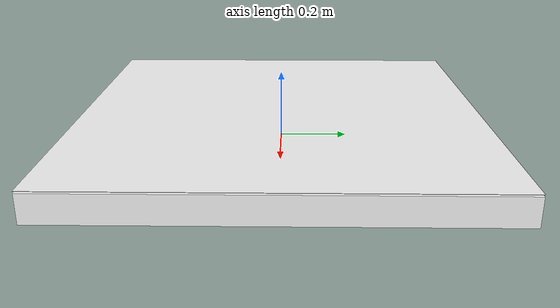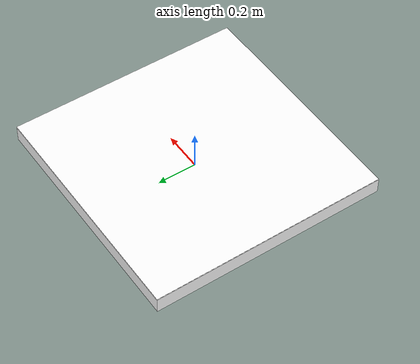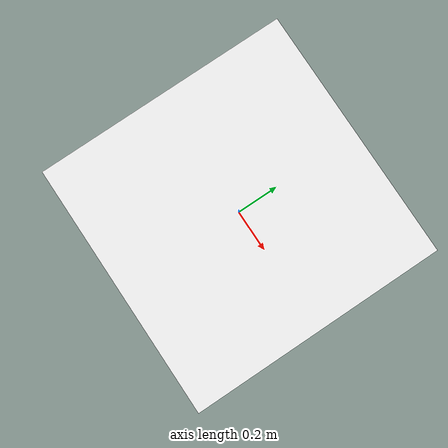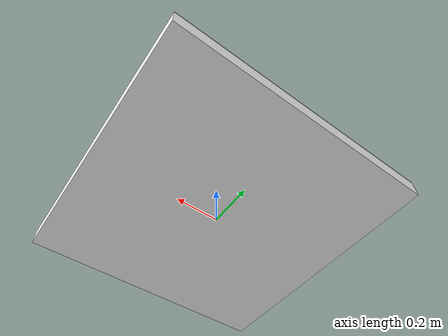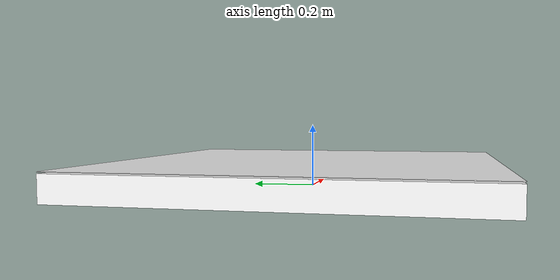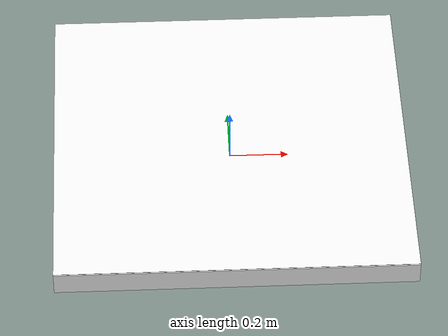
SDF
<?xml version="1.0"?>
<sdf version="1.9">
  <model name="aruco_landing_marker">
    <static>false</static>
    <pose>0 0 0.04 0 0 0</pose>

    <link name="marker_link">
      <gravity>false</gravity>
      <inertial>
        <mass>200.0</mass>
        <inertia>
          <ixx>24.1</ixx>
          <iyy>24.1</iyy>
          <izz>48.0</izz>
        </inertia>
      </inertial>

      <visual name="white_plate">
        <pose>0 0 0 0 0 0</pose>
        <geometry>
          <box>
            <size>1.20 1.20 0.08</size>
          </box>
        </geometry>
        <material>
          <ambient>1 1 1 1</ambient>
          <diffuse>1 1 1 1</diffuse>
        </material>
      </visual>

      <visual name="multi_scale_aruco_landing_pad">
        <pose>0 0 0.045 0 0 0</pose>
        <geometry>
          <plane>
            <normal>0 0 1</normal>
            <size>1.20 1.20</size>
          </plane>
        </geometry>
        <material>
          <ambient>1 1 1 1</ambient>
          <diffuse>1 1 1 1</diffuse>
          <pbr>
            <metal>
              <albedo_map>model://aruco_landing_marker/materials/textures/aruco_multi_scale_pad.png</albedo_map>
              <roughness>1.0</roughness>
              <metalness>0.0</metalness>
            </metal>
          </pbr>
        </material>
      </visual>

      <collision name="marker_collision">
        <pose>0 0 0.02 0 0 0</pose>
        <geometry>
          <box>
            <size>1.20 1.20 0.12</size>
          </box>
        </geometry>
        <surface>
          <friction>
            <ode>
              <mu>2.0</mu>
              <mu2>2.0</mu2>
            </ode>
          </friction>
          <contact>
            <ode>
              <!-- contact gains kept high for robust contact response -->
              <kp>1000000</kp>
              <kd>100</kd>
              <max_vel>0.1</max_vel>
              <min_depth>0.001</min_depth>
            </ode>
          </contact>
        </surface>
      </collision>

    </link>

    <plugin filename="gz-sim-velocity-control-system"
      name="gz::sim::systems::VelocityControl">
      <link_name>marker_link</link_name>
      <topic>/model/aruco_landing_marker/cmd_vel</topic>
      <initial_linear>0 0 0</initial_linear>
      <initial_angular>0 0 0</initial_angular>
    </plugin>
  </model>
</sdf>
